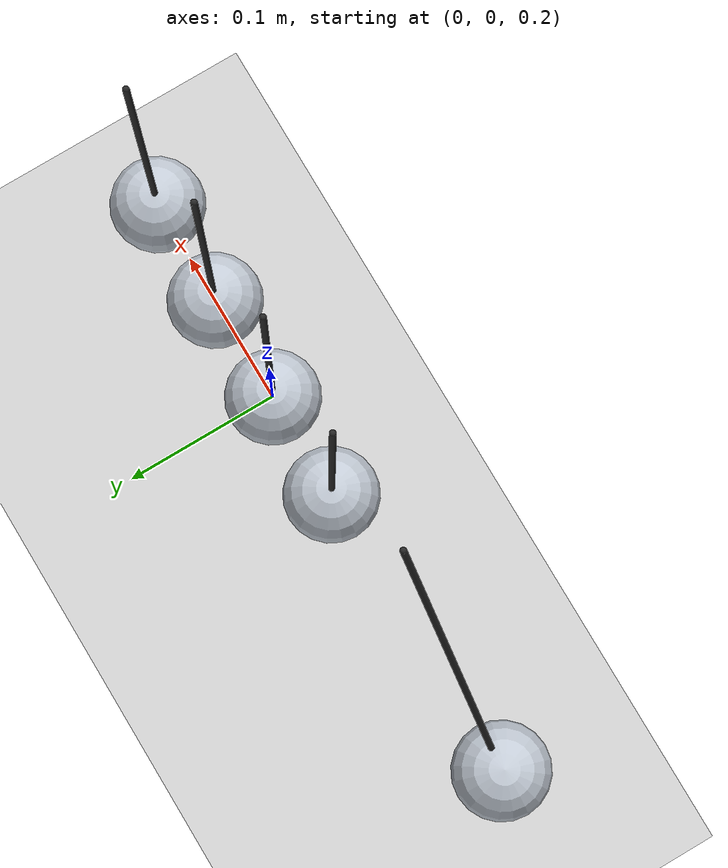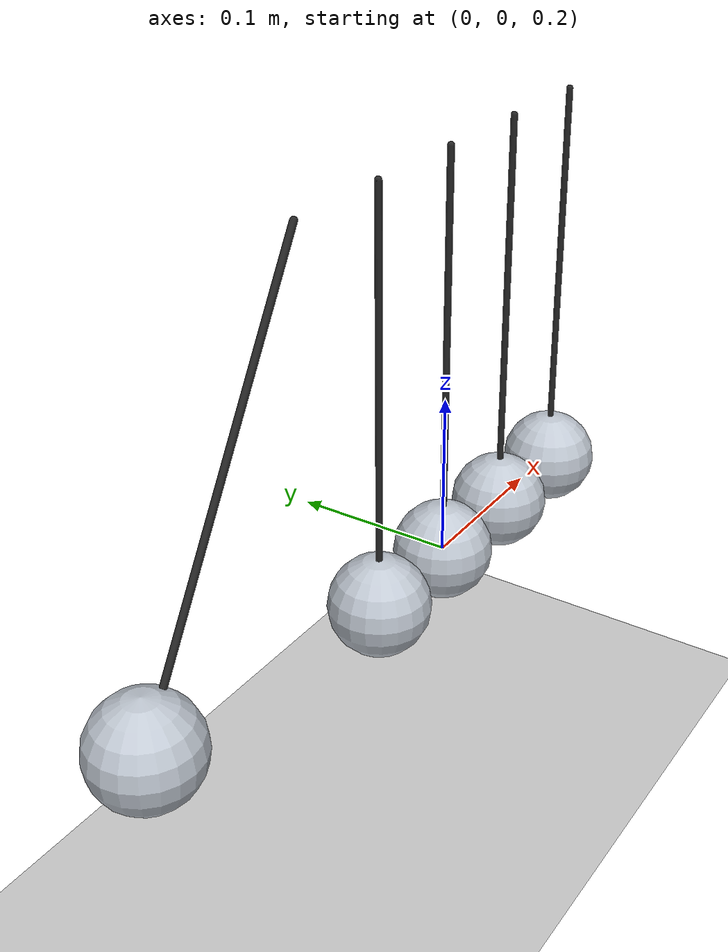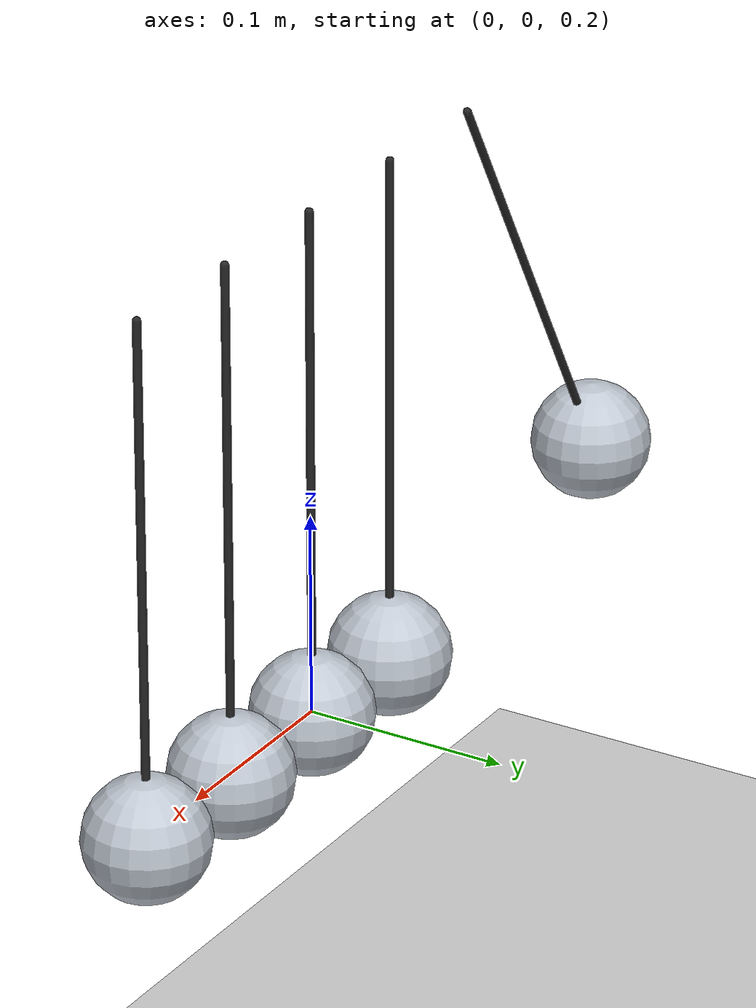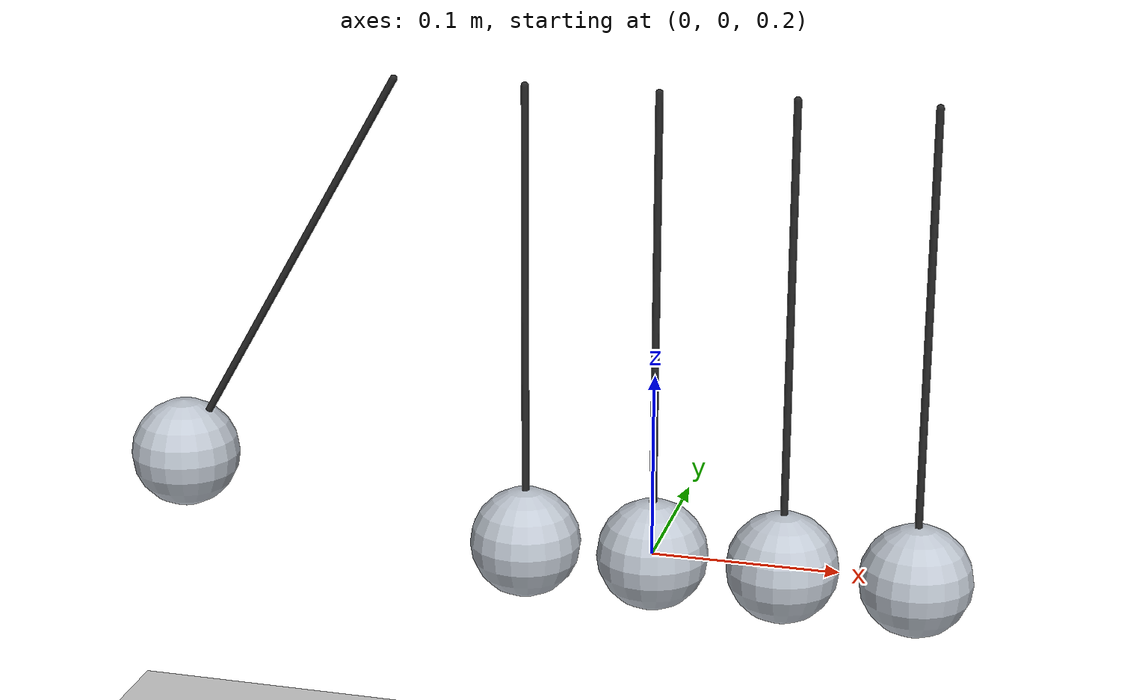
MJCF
<mujoco model="newtons_cradle_5_balls">
  <compiler angle="degree" coordinate="local" inertiafromgeom="true"/>
  <option timestep="0.002" gravity="0 0 -9.81" integrator="RK4"/>
  <size njmax="2000" nconmax="500"/>

  <asset>
    <!-- Shiny metal appearance -->
    <material name="metal_shiny" rgba="0.75 0.78 0.82 1" specular="0.9" shininess="0.8"/>
    <material name="string_mat"  rgba="0.15 0.15 0.15 1" specular="0.1" shininess="0.1"/>
  </asset>

  <worldbody>
    <!-- ground -->
    <geom name="floor" type="plane" size="2 2 0.1" rgba="0.8 0.8 0.8 1"/>

    <!-- Camera faces the balls -->
    <camera name="cam_front" pos="0 -1.2 0.35" xyaxes="1 0 0 0 0 1" fovy="45"/>

    <!-- Anchor line (top not visible): we still need anchor points to suspend strings -->
    <!-- Balls are aligned along X, equally spaced -->
    <!-- Parameters -->
    <!-- String length = 0.25 m, ball radius = 0.03 m, spacing ~ 2R + small gap -->
    <body name="cradle_root" pos="0 0 0.45">
      <!-- optional invisible reference -->
      <geom name="root_ref" type="sphere" size="0.001" rgba="0 0 0 0" contype="0" conaffinity="0"/>

      <!-- Leftmost ball: initial angle 30 degrees in +Y direction (pulled towards camera) -->
      <!-- Achieved by placing ball at rotated position, with a ball joint that will let it swing. -->
      <body name="ball1_anchor" pos="-0.14 0 0">
        <!-- visible vertical string segment -->
        <geom name="string1" type="capsule"
              fromto="0 0 0  -0.125 0 -0.216506"
              size="0.002"
              material="string_mat"
              contype="0" conaffinity="0"/>
        <!-- pendulum body (ball) -->
        <!-- Initial displacement: 30 deg, length 0.25 => y = L*sin(30)=0.125, z = -L*cos(30)=-0.2165 -->
        <body name="ball1" pos="-0.125 0 -0.216506">
          <joint name="ball1_joint" type="ball" pos="0 0 0" damping="0.001"/>
          <geom name="ball1_geom" type="sphere" size="0.03" material="metal_shiny"
                density="7800" friction="0.2 0.005 0.0001" solref="0.002 1" solimp="0.9 0.95 0.001"/>
          <!-- Released: initial velocity = 0 -->
        </body>
      </body>

      <!-- Middle balls: hanging straight down -->
      <body name="ball2_anchor" pos="-0.07 0 0">
        <geom name="string2" type="capsule" fromto="0 0 0  0 0 -0.25" size="0.002"
              material="string_mat" contype="0" conaffinity="0"/>
        <body name="ball2" pos="0 0 -0.25">
          <joint name="ball2_joint" type="ball" damping="0.001"/>
          <geom name="ball2_geom" type="sphere" size="0.03" material="metal_shiny"
                density="7800" friction="0.2 0.005 0.0001" solref="0.002 1" solimp="0.9 0.95 0.001"/>
        </body>
      </body>

      <body name="ball3_anchor" pos="0 0 0">
        <geom name="string3" type="capsule" fromto="0 0 0  0 0 -0.25" size="0.002"
              material="string_mat" contype="0" conaffinity="0"/>
        <body name="ball3" pos="0 0 -0.25">
          <joint name="ball3_joint" type="ball" damping="0.001"/>
          <geom name="ball3_geom" type="sphere" size="0.03" material="metal_shiny"
                density="7800" friction="0.2 0.005 0.0001" solref="0.002 1" solimp="0.9 0.95 0.001"/>
        </body>
      </body>

      <body name="ball4_anchor" pos="0.07 0 0">
        <geom name="string4" type="capsule" fromto="0 0 0  0 0 -0.25" size="0.002"
              material="string_mat" contype="0" conaffinity="0"/>
        <body name="ball4" pos="0 0 -0.25">
          <joint name="ball4_joint" type="ball" damping="0.001"/>
          <geom name="ball4_geom" type="sphere" size="0.03" material="metal_shiny"
                density="7800" friction="0.2 0.005 0.0001" solref="0.002 1" solimp="0.9 0.95 0.001"/>
        </body>
      </body>

      <body name="ball5_anchor" pos="0.14 0 0">
        <geom name="string5" type="capsule" fromto="0 0 0  0 0 -0.25" size="0.002"
              material="string_mat" contype="0" conaffinity="0"/>
        <body name="ball5" pos="0 0 -0.25">
          <joint name="ball5_joint" type="ball" damping="0.001"/>
          <geom name="ball5_geom" type="sphere" size="0.03" material="metal_shiny"
                density="7800" friction="0.2 0.005 0.0001" solref="0.002 1" solimp="0.9 0.95 0.001"/>
        </body>
      </body>
    </body>
  </worldbody>

</mujoco>
